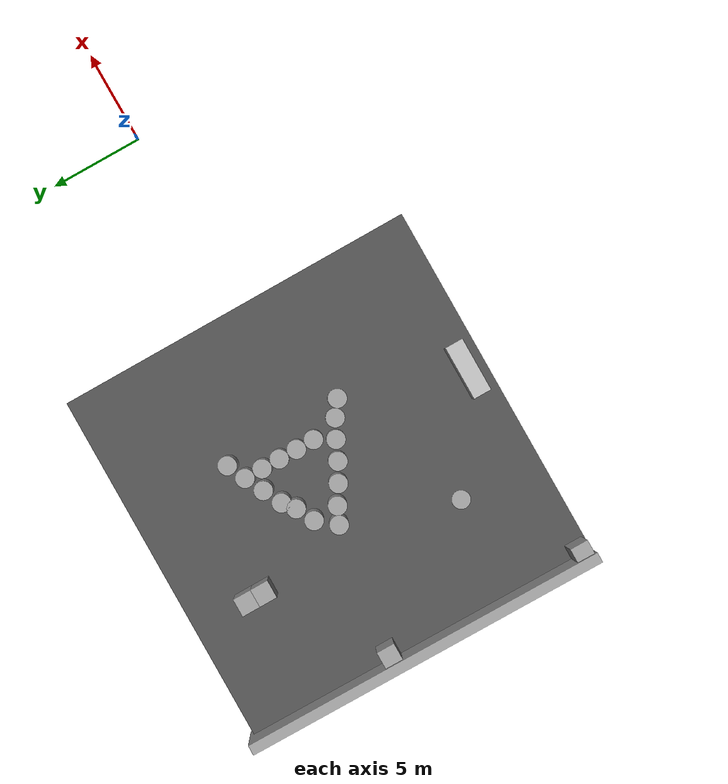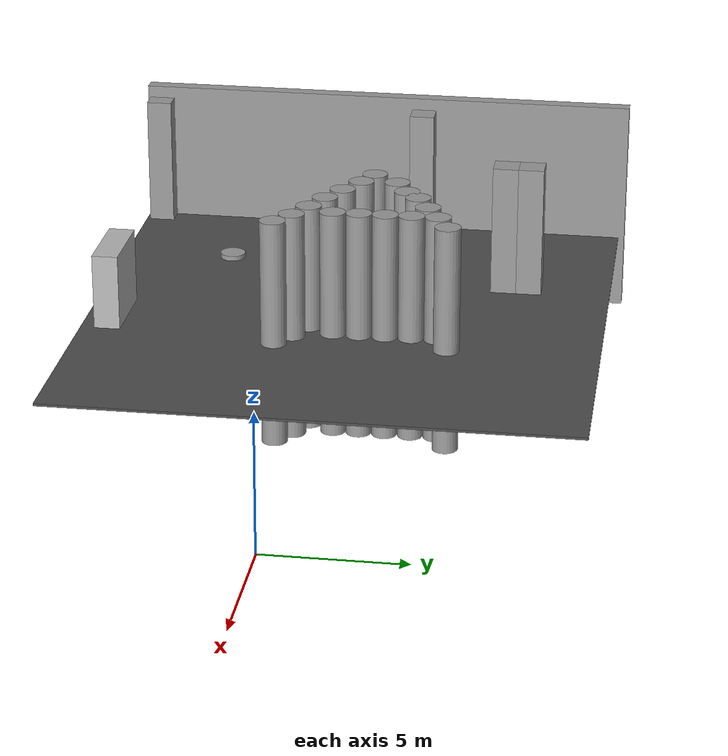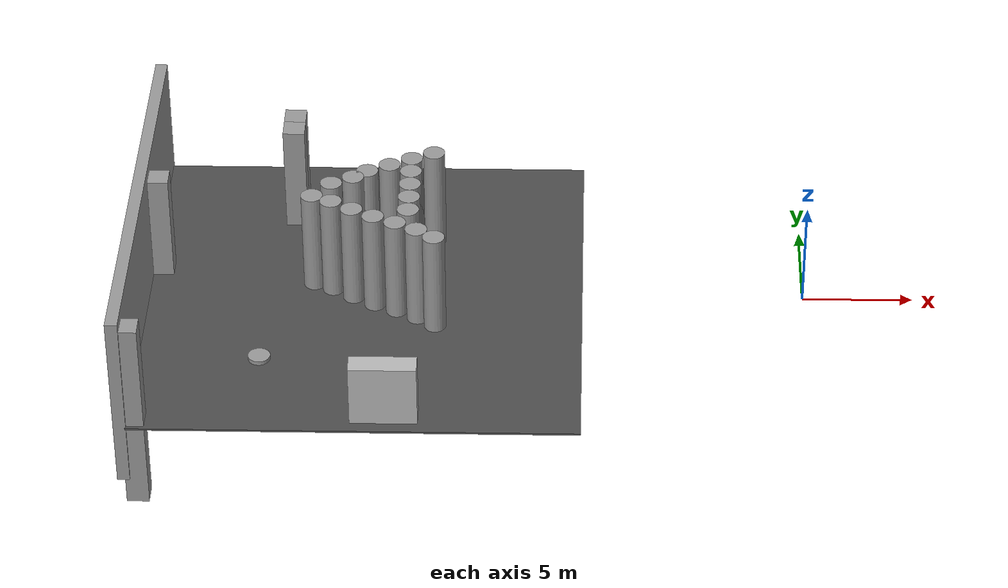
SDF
<sdf version="1.6">
 <model name="MW_world_1_0_0">
  <link name="link_0_0_clone_5_clone_2_clone_4_clone_6">
   <pose>-16.7873 -2.35435 0.5 0 -0 0</pose>
   <inertial>
    <mass>9.05819</mass>
    <inertia><ixx>62.5018</ixx><ixy>0</ixy><ixz>0</ixz><iyy>62.5018</iyy><iyz>0</iyz><izz>1.13227</izz></inertia>
   </inertial>
   <visual name="visual_0">
    <geometry><cylinder><radius>0.5</radius><length>9.05819</length></cylinder></geometry>
    <material>
     <lighting>1</lighting>
     <script><uri>file://media/materials/scripts/gazebo.material</uri><name>Gazebo/Grey</name></script>
     <ambient>0.3 0.3 0.3 1</ambient>
     <diffuse>0.7 0.7 0.7 1</diffuse>
     <specular>0.01 0.01 0.01 1</specular>
     <emissive>0 0 0 1</emissive>
     <shader type="pixel"/>
    </material>
   </visual>
   <collision name="collision">
    <geometry><cylinder><radius>0.5</radius><length>9.05819</length></cylinder></geometry>
    <surface>
     <friction>
      <ode><mu>1</mu><mu2>1</mu2><fdir1>0 0 0</fdir1><slip1>0</slip1><slip2>0</slip2></ode>
      <torsional>
       <coefficient>1</coefficient>
       <patch_radius>0</patch_radius>
       <surface_radius>0</surface_radius>
       <use_patch_radius>1</use_patch_radius>
       <ode><slip>0</slip></ode>
      </torsional>
     </friction>
     <bounce><restitution_coefficient>0</restitution_coefficient><threshold>1e+06</threshold></bounce>
     <contact>
      <collide_without_contact>0</collide_without_contact>
      <collide_without_contact_bitmask>1</collide_without_contact_bitmask>
      <collide_bitmask>1</collide_bitmask>
      <ode>
       <soft_cfm>0</soft_cfm>
       <soft_erp>0.2</soft_erp>
       <kp>1e+13</kp>
       <kd>1</kd>
       <max_vel>0.01</max_vel>
       <min_depth>0</min_depth>
      </ode>
      <bullet>
       <split_impulse>1</split_impulse>
       <split_impulse_penetration_threshold>-0.01</split_impulse_penetration_threshold>
       <soft_cfm>0</soft_cfm>
       <soft_erp>0.2</soft_erp>
       <kp>1e+13</kp>
       <kd>1</kd>
      </bullet>
     </contact>
    </surface>
   </collision>
  </link>
  <link name="link_0_0_clone_5_clone_9_clone">
   <pose>-22.4398 0.7321 0.5 0 -0 0</pose>
   <inertial>
    <mass>9.05819</mass>
    <inertia><ixx>62.5018</ixx><ixy>0</ixy><ixz>0</ixz><iyy>62.5018</iyy><iyz>0</iyz><izz>1.13227</izz></inertia>
   </inertial>
   <visual name="visual_0">
    <geometry><cylinder><radius>0.5</radius><length>9.05819</length></cylinder></geometry>
    <material>
     <lighting>1</lighting>
     <script><uri>file://media/materials/scripts/gazebo.material</uri><name>Gazebo/Grey</name></script>
     <ambient>0.3 0.3 0.3 1</ambient>
     <diffuse>0.7 0.7 0.7 1</diffuse>
     <specular>0.01 0.01 0.01 1</specular>
     <emissive>0 0 0 1</emissive>
     <shader type="pixel"/>
    </material>
   </visual>
   <collision name="collision">
    <geometry><cylinder><radius>0.5</radius><length>9.05819</length></cylinder></geometry>
    <surface>
     <friction>
      <ode><mu>1</mu><mu2>1</mu2><fdir1>0 0 0</fdir1><slip1>0</slip1><slip2>0</slip2></ode>
      <torsional>
       <coefficient>1</coefficient>
       <patch_radius>0</patch_radius>
       <surface_radius>0</surface_radius>
       <use_patch_radius>1</use_patch_radius>
       <ode><slip>0</slip></ode>
      </torsional>
     </friction>
     <bounce><restitution_coefficient>0</restitution_coefficient><threshold>1e+06</threshold></bounce>
     <contact>
      <collide_without_contact>0</collide_without_contact>
      <collide_without_contact_bitmask>1</collide_without_contact_bitmask>
      <collide_bitmask>1</collide_bitmask>
      <ode>
       <soft_cfm>0</soft_cfm>
       <soft_erp>0.2</soft_erp>
       <kp>1e+13</kp>
       <kd>1</kd>
       <max_vel>0.01</max_vel>
       <min_depth>0</min_depth>
      </ode>
      <bullet>
       <split_impulse>1</split_impulse>
       <split_impulse_penetration_threshold>-0.01</split_impulse_penetration_threshold>
       <soft_cfm>0</soft_cfm>
       <soft_erp>0.2</soft_erp>
       <kp>1e+13</kp>
       <kd>1</kd>
      </bullet>
     </contact>
    </surface>
   </collision>
  </link>
  <link name="link_0_0_clone_5_clone_9_clone_0">
   <pose>-21.5496 0.324095 0.5 0 -0 0</pose>
   <inertial>
    <mass>9.05819</mass>
    <inertia><ixx>62.5018</ixx><ixy>0</ixy><ixz>0</ixz><iyy>62.5018</iyy><iyz>0</iyz><izz>1.13227</izz></inertia>
   </inertial>
   <visual name="visual_0">
    <geometry><cylinder><radius>0.5</radius><length>9.05819</length></cylinder></geometry>
    <material>
     <lighting>1</lighting>
     <script><uri>file://media/materials/scripts/gazebo.material</uri><name>Gazebo/Grey</name></script>
     <ambient>0.3 0.3 0.3 1</ambient>
     <diffuse>0.7 0.7 0.7 1</diffuse>
     <specular>0.01 0.01 0.01 1</specular>
     <emissive>0 0 0 1</emissive>
     <shader type="pixel"/>
    </material>
   </visual>
   <collision name="collision">
    <geometry><cylinder><radius>0.5</radius><length>9.05819</length></cylinder></geometry>
    <surface>
     <friction>
      <ode><mu>1</mu><mu2>1</mu2><fdir1>0 0 0</fdir1><slip1>0</slip1><slip2>0</slip2></ode>
      <torsional>
       <coefficient>1</coefficient>
       <patch_radius>0</patch_radius>
       <surface_radius>0</surface_radius>
       <use_patch_radius>1</use_patch_radius>
       <ode><slip>0</slip></ode>
      </torsional>
     </friction>
     <bounce><restitution_coefficient>0</restitution_coefficient><threshold>1e+06</threshold></bounce>
     <contact>
      <collide_without_contact>0</collide_without_contact>
      <collide_without_contact_bitmask>1</collide_without_contact_bitmask>
      <collide_bitmask>1</collide_bitmask>
      <ode>
       <soft_cfm>0</soft_cfm>
       <soft_erp>0.2</soft_erp>
       <kp>1e+13</kp>
       <kd>1</kd>
       <max_vel>0.01</max_vel>
       <min_depth>0</min_depth>
      </ode>
      <bullet>
       <split_impulse>1</split_impulse>
       <split_impulse_penetration_threshold>-0.01</split_impulse_penetration_threshold>
       <soft_cfm>0</soft_cfm>
       <soft_erp>0.2</soft_erp>
       <kp>1e+13</kp>
       <kd>1</kd>
      </bullet>
     </contact>
    </surface>
   </collision>
  </link>
  <link name="link_0_0_clone_5_clone_9_clone_1">
   <pose>-20.5779 -0.2679 0.5 0 -0 0</pose>
   <inertial>
    <mass>9.05819</mass>
    <inertia><ixx>62.5018</ixx><ixy>0</ixy><ixz>0</ixz><iyy>62.5018</iyy><iyz>0</iyz><izz>1.13227</izz></inertia>
   </inertial>
   <visual name="visual_0">
    <geometry><cylinder><radius>0.5</radius><length>9.05819</length></cylinder></geometry>
    <material>
     <lighting>1</lighting>
     <script><uri>file://media/materials/scripts/gazebo.material</uri><name>Gazebo/Grey</name></script>
     <ambient>0.3 0.3 0.3 1</ambient>
     <diffuse>0.7 0.7 0.7 1</diffuse>
     <specular>0.01 0.01 0.01 1</specular>
     <emissive>0 0 0 1</emissive>
     <shader type="pixel"/>
    </material>
   </visual>
   <collision name="collision">
    <geometry><cylinder><radius>0.5</radius><length>9.05819</length></cylinder></geometry>
    <surface>
     <friction>
      <ode><mu>1</mu><mu2>1</mu2><fdir1>0 0 0</fdir1><slip1>0</slip1><slip2>0</slip2></ode>
      <torsional>
       <coefficient>1</coefficient>
       <patch_radius>0</patch_radius>
       <surface_radius>0</surface_radius>
       <use_patch_radius>1</use_patch_radius>
       <ode><slip>0</slip></ode>
      </torsional>
     </friction>
     <bounce><restitution_coefficient>0</restitution_coefficient><threshold>1e+06</threshold></bounce>
     <contact>
      <collide_without_contact>0</collide_without_contact>
      <collide_without_contact_bitmask>1</collide_without_contact_bitmask>
      <collide_bitmask>1</collide_bitmask>
      <ode>
       <soft_cfm>0</soft_cfm>
       <soft_erp>0.2</soft_erp>
       <kp>1e+13</kp>
       <kd>1</kd>
       <max_vel>0.01</max_vel>
       <min_depth>0</min_depth>
      </ode>
      <bullet>
       <split_impulse>1</split_impulse>
       <split_impulse_penetration_threshold>-0.01</split_impulse_penetration_threshold>
       <soft_cfm>0</soft_cfm>
       <soft_erp>0.2</soft_erp>
       <kp>1e+13</kp>
       <kd>1</kd>
      </bullet>
     </contact>
    </surface>
   </collision>
  </link>
  <link name="link_0_0_clone_5_clone_9_clone_11">
   <pose>-17.5977 -1.77285 0.5 0 -0 0</pose>
   <inertial>
    <mass>9.05819</mass>
    <inertia><ixx>62.5018</ixx><ixy>0</ixy><ixz>0</ixz><iyy>62.5018</iyy><iyz>0</iyz><izz>1.13227</izz></inertia>
   </inertial>
   <visual name="visual_0">
    <geometry><cylinder><radius>0.5</radius><length>9.05819</length></cylinder></geometry>
    <material>
     <lighting>1</lighting>
     <script><uri>file://media/materials/scripts/gazebo.material</uri><name>Gazebo/Grey</name></script>
     <ambient>0.3 0.3 0.3 1</ambient>
     <diffuse>0.7 0.7 0.7 1</diffuse>
     <specular>0.01 0.01 0.01 1</specular>
     <emissive>0 0 0 1</emissive>
     <shader type="pixel"/>
    </material>
   </visual>
   <collision name="collision">
    <geometry><cylinder><radius>0.5</radius><length>9.05819</length></cylinder></geometry>
    <surface>
     <friction>
      <ode><mu>1</mu><mu2>1</mu2><fdir1>0 0 0</fdir1><slip1>0</slip1><slip2>0</slip2></ode>
      <torsional>
       <coefficient>1</coefficient>
       <patch_radius>0</patch_radius>
       <surface_radius>0</surface_radius>
       <use_patch_radius>1</use_patch_radius>
       <ode><slip>0</slip></ode>
      </torsional>
     </friction>
     <bounce><restitution_coefficient>0</restitution_coefficient><threshold>1e+06</threshold></bounce>
     <contact>
      <collide_without_contact>0</collide_without_contact>
      <collide_without_contact_bitmask>1</collide_without_contact_bitmask>
      <collide_bitmask>1</collide_bitmask>
      <ode>
       <soft_cfm>0</soft_cfm>
       <soft_erp>0.2</soft_erp>
       <kp>1e+13</kp>
       <kd>1</kd>
       <max_vel>0.01</max_vel>
       <min_depth>0</min_depth>
      </ode>
      <bullet>
       <split_impulse>1</split_impulse>
       <split_impulse_penetration_threshold>-0.01</split_impulse_penetration_threshold>
       <soft_cfm>0</soft_cfm>
       <soft_erp>0.2</soft_erp>
       <kp>1e+13</kp>
       <kd>1</kd>
      </bullet>
     </contact>
    </surface>
   </collision>
  </link>
  <link name="link_0_0_clone_5_clone_9_clone_14">
   <pose>-18.0181 -0.2679 0.5 0 -0 0</pose>
   <inertial>
    <mass>9.05819</mass>
    <inertia><ixx>62.5018</ixx><ixy>0</ixy><ixz>0</ixz><iyy>62.5018</iyy><iyz>0</iyz><izz>1.13227</izz></inertia>
   </inertial>
   <visual name="visual_0">
    <geometry><cylinder><radius>0.5</radius><length>9.05819</length></cylinder></geometry>
    <material>
     <lighting>1</lighting>
     <script><uri>file://media/materials/scripts/gazebo.material</uri><name>Gazebo/Grey</name></script>
     <ambient>0.3 0.3 0.3 1</ambient>
     <diffuse>0.7 0.7 0.7 1</diffuse>
     <specular>0.01 0.01 0.01 1</specular>
     <emissive>0 0 0 1</emissive>
     <shader type="pixel"/>
    </material>
   </visual>
   <collision name="collision">
    <geometry><cylinder><radius>0.5</radius><length>9.05819</length></cylinder></geometry>
    <surface>
     <friction>
      <ode><mu>1</mu><mu2>1</mu2><fdir1>0 0 0</fdir1><slip1>0</slip1><slip2>0</slip2></ode>
      <torsional>
       <coefficient>1</coefficient>
       <patch_radius>0</patch_radius>
       <surface_radius>0</surface_radius>
       <use_patch_radius>1</use_patch_radius>
       <ode><slip>0</slip></ode>
      </torsional>
     </friction>
     <bounce><restitution_coefficient>0</restitution_coefficient><threshold>1e+06</threshold></bounce>
     <contact>
      <collide_without_contact>0</collide_without_contact>
      <collide_without_contact_bitmask>1</collide_without_contact_bitmask>
      <collide_bitmask>1</collide_bitmask>
      <ode>
       <soft_cfm>0</soft_cfm>
       <soft_erp>0.2</soft_erp>
       <kp>1e+13</kp>
       <kd>1</kd>
       <max_vel>0.01</max_vel>
       <min_depth>0</min_depth>
      </ode>
      <bullet>
       <split_impulse>1</split_impulse>
       <split_impulse_penetration_threshold>-0.01</split_impulse_penetration_threshold>
       <soft_cfm>0</soft_cfm>
       <soft_erp>0.2</soft_erp>
       <kp>1e+13</kp>
       <kd>1</kd>
      </bullet>
     </contact>
    </surface>
   </collision>
  </link>
  <link name="link_0_0_clone_5_clone_9_clone_15">
   <pose>-18.0181 0.7321 0.5 0 -0 0</pose>
   <inertial>
    <mass>9.05819</mass>
    <inertia><ixx>62.5018</ixx><ixy>0</ixy><ixz>0</ixz><iyy>62.5018</iyy><iyz>0</iyz><izz>1.13227</izz></inertia>
   </inertial>
   <visual name="visual_0">
    <geometry><cylinder><radius>0.5</radius><length>9.05819</length></cylinder></geometry>
    <material>
     <lighting>1</lighting>
     <script><uri>file://media/materials/scripts/gazebo.material</uri><name>Gazebo/Grey</name></script>
     <ambient>0.3 0.3 0.3 1</ambient>
     <diffuse>0.7 0.7 0.7 1</diffuse>
     <specular>0.01 0.01 0.01 1</specular>
     <emissive>0 0 0 1</emissive>
     <shader type="pixel"/>
    </material>
   </visual>
   <collision name="collision">
    <geometry><cylinder><radius>0.5</radius><length>9.05819</length></cylinder></geometry>
    <surface>
     <friction>
      <ode><mu>1</mu><mu2>1</mu2><fdir1>0 0 0</fdir1><slip1>0</slip1><slip2>0</slip2></ode>
      <torsional>
       <coefficient>1</coefficient>
       <patch_radius>0</patch_radius>
       <surface_radius>0</surface_radius>
       <use_patch_radius>1</use_patch_radius>
       <ode><slip>0</slip></ode>
      </torsional>
     </friction>
     <bounce><restitution_coefficient>0</restitution_coefficient><threshold>1e+06</threshold></bounce>
     <contact>
      <collide_without_contact>0</collide_without_contact>
      <collide_without_contact_bitmask>1</collide_without_contact_bitmask>
      <collide_bitmask>1</collide_bitmask>
      <ode>
       <soft_cfm>0</soft_cfm>
       <soft_erp>0.2</soft_erp>
       <kp>1e+13</kp>
       <kd>1</kd>
       <max_vel>0.01</max_vel>
       <min_depth>0</min_depth>
      </ode>
      <bullet>
       <split_impulse>1</split_impulse>
       <split_impulse_penetration_threshold>-0.01</split_impulse_penetration_threshold>
       <soft_cfm>0</soft_cfm>
       <soft_erp>0.2</soft_erp>
       <kp>1e+13</kp>
       <kd>1</kd>
      </bullet>
     </contact>
    </surface>
   </collision>
  </link>
  <link name="link_0_0_clone_5_clone_9_clone_16">
   <pose>-18.0181 1.7321 0.5 0 -0 0</pose>
   <inertial>
    <mass>9.05819</mass>
    <inertia><ixx>62.5018</ixx><ixy>0</ixy><ixz>0</ixz><iyy>62.5018</iyy><iyz>0</iyz><izz>1.13227</izz></inertia>
   </inertial>
   <visual name="visual_0">
    <geometry><cylinder><radius>0.5</radius><length>9.05819</length></cylinder></geometry>
    <material>
     <lighting>1</lighting>
     <script><uri>file://media/materials/scripts/gazebo.material</uri><name>Gazebo/Grey</name></script>
     <ambient>0.3 0.3 0.3 1</ambient>
     <diffuse>0.7 0.7 0.7 1</diffuse>
     <specular>0.01 0.01 0.01 1</specular>
     <emissive>0 0 0 1</emissive>
     <shader type="pixel"/>
    </material>
   </visual>
   <collision name="collision">
    <geometry><cylinder><radius>0.5</radius><length>9.05819</length></cylinder></geometry>
    <surface>
     <friction>
      <ode><mu>1</mu><mu2>1</mu2><fdir1>0 0 0</fdir1><slip1>0</slip1><slip2>0</slip2></ode>
      <torsional>
       <coefficient>1</coefficient>
       <patch_radius>0</patch_radius>
       <surface_radius>0</surface_radius>
       <use_patch_radius>1</use_patch_radius>
       <ode><slip>0</slip></ode>
      </torsional>
     </friction>
     <bounce><restitution_coefficient>0</restitution_coefficient><threshold>1e+06</threshold></bounce>
     <contact>
      <collide_without_contact>0</collide_without_contact>
      <collide_without_contact_bitmask>1</collide_without_contact_bitmask>
      <collide_bitmask>1</collide_bitmask>
      <ode>
       <soft_cfm>0</soft_cfm>
       <soft_erp>0.2</soft_erp>
       <kp>1e+13</kp>
       <kd>1</kd>
       <max_vel>0.01</max_vel>
       <min_depth>0</min_depth>
      </ode>
      <bullet>
       <split_impulse>1</split_impulse>
       <split_impulse_penetration_threshold>-0.01</split_impulse_penetration_threshold>
       <soft_cfm>0</soft_cfm>
       <soft_erp>0.2</soft_erp>
       <kp>1e+13</kp>
       <kd>1</kd>
      </bullet>
     </contact>
    </surface>
   </collision>
  </link>
  <link name="link_0_0_clone_5_clone_9_clone_17">
   <pose>-18.0181 2.7321 0.5 0 -0 0</pose>
   <inertial>
    <mass>9.05819</mass>
    <inertia><ixx>62.5018</ixx><ixy>0</ixy><ixz>0</ixz><iyy>62.5018</iyy><iyz>0</iyz><izz>1.13227</izz></inertia>
   </inertial>
   <visual name="visual_0">
    <geometry><cylinder><radius>0.5</radius><length>9.05819</length></cylinder></geometry>
    <material>
     <lighting>1</lighting>
     <script><uri>file://media/materials/scripts/gazebo.material</uri><name>Gazebo/Grey</name></script>
     <ambient>0.3 0.3 0.3 1</ambient>
     <diffuse>0.7 0.7 0.7 1</diffuse>
     <specular>0.01 0.01 0.01 1</specular>
     <emissive>0 0 0 1</emissive>
     <shader type="pixel"/>
    </material>
   </visual>
   <collision name="collision">
    <geometry><cylinder><radius>0.5</radius><length>9.05819</length></cylinder></geometry>
    <surface>
     <friction>
      <ode><mu>1</mu><mu2>1</mu2><fdir1>0 0 0</fdir1><slip1>0</slip1><slip2>0</slip2></ode>
      <torsional>
       <coefficient>1</coefficient>
       <patch_radius>0</patch_radius>
       <surface_radius>0</surface_radius>
       <use_patch_radius>1</use_patch_radius>
       <ode><slip>0</slip></ode>
      </torsional>
     </friction>
     <bounce><restitution_coefficient>0</restitution_coefficient><threshold>1e+06</threshold></bounce>
     <contact>
      <collide_without_contact>0</collide_without_contact>
      <collide_without_contact_bitmask>1</collide_without_contact_bitmask>
      <collide_bitmask>1</collide_bitmask>
      <ode>
       <soft_cfm>0</soft_cfm>
       <soft_erp>0.2</soft_erp>
       <kp>1e+13</kp>
       <kd>1</kd>
       <max_vel>0.01</max_vel>
       <min_depth>0</min_depth>
      </ode>
      <bullet>
       <split_impulse>1</split_impulse>
       <split_impulse_penetration_threshold>-0.01</split_impulse_penetration_threshold>
       <soft_cfm>0</soft_cfm>
       <soft_erp>0.2</soft_erp>
       <kp>1e+13</kp>
       <kd>1</kd>
      </bullet>
     </contact>
    </surface>
   </collision>
  </link>
  <link name="link_0_0_clone_5_clone_9_clone_2">
   <pose>-19.5839 -0.80685 0.5 0 -0 0</pose>
   <inertial>
    <mass>9.05819</mass>
    <inertia><ixx>62.5018</ixx><ixy>0</ixy><ixz>0</ixz><iyy>62.5018</iyy><iyz>0</iyz><izz>1.13227</izz></inertia>
   </inertial>
   <visual name="visual_0">
    <geometry><cylinder><radius>0.5</radius><length>9.05819</length></cylinder></geometry>
    <material>
     <lighting>1</lighting>
     <script><uri>file://media/materials/scripts/gazebo.material</uri><name>Gazebo/Grey</name></script>
     <ambient>0.3 0.3 0.3 1</ambient>
     <diffuse>0.7 0.7 0.7 1</diffuse>
     <specular>0.01 0.01 0.01 1</specular>
     <emissive>0 0 0 1</emissive>
     <shader type="pixel"/>
    </material>
   </visual>
   <collision name="collision">
    <geometry><cylinder><radius>0.5</radius><length>9.05819</length></cylinder></geometry>
    <surface>
     <friction>
      <ode><mu>1</mu><mu2>1</mu2><fdir1>0 0 0</fdir1><slip1>0</slip1><slip2>0</slip2></ode>
      <torsional>
       <coefficient>1</coefficient>
       <patch_radius>0</patch_radius>
       <surface_radius>0</surface_radius>
       <use_patch_radius>1</use_patch_radius>
       <ode><slip>0</slip></ode>
      </torsional>
     </friction>
     <bounce><restitution_coefficient>0</restitution_coefficient><threshold>1e+06</threshold></bounce>
     <contact>
      <collide_without_contact>0</collide_without_contact>
      <collide_without_contact_bitmask>1</collide_without_contact_bitmask>
      <collide_bitmask>1</collide_bitmask>
      <ode>
       <soft_cfm>0</soft_cfm>
       <soft_erp>0.2</soft_erp>
       <kp>1e+13</kp>
       <kd>1</kd>
       <max_vel>0.01</max_vel>
       <min_depth>0</min_depth>
      </ode>
      <bullet>
       <split_impulse>1</split_impulse>
       <split_impulse_penetration_threshold>-0.01</split_impulse_penetration_threshold>
       <soft_cfm>0</soft_cfm>
       <soft_erp>0.2</soft_erp>
       <kp>1e+13</kp>
       <kd>1</kd>
      </bullet>
     </contact>
    </surface>
   </collision>
  </link>
  <link name="link_0_0_clone_5_clone_9_clone_3">
   <pose>-18.5698 -1.2679 0.5 0 -0 0</pose>
   <inertial>
    <mass>9.05819</mass>
    <inertia><ixx>62.5018</ixx><ixy>0</ixy><ixz>0</ixz><iyy>62.5018</iyy><iyz>0</iyz><izz>1.13227</izz></inertia>
   </inertial>
   <visual name="visual_0">
    <geometry><cylinder><radius>0.5</radius><length>9.05819</length></cylinder></geometry>
    <material>
     <lighting>1</lighting>
     <script><uri>file://media/materials/scripts/gazebo.material</uri><name>Gazebo/Grey</name></script>
     <ambient>0.3 0.3 0.3 1</ambient>
     <diffuse>0.7 0.7 0.7 1</diffuse>
     <specular>0.01 0.01 0.01 1</specular>
     <emissive>0 0 0 1</emissive>
     <shader type="pixel"/>
    </material>
   </visual>
   <collision name="collision">
    <geometry><cylinder><radius>0.5</radius><length>9.05819</length></cylinder></geometry>
    <surface>
     <friction>
      <ode><mu>1</mu><mu2>1</mu2><fdir1>0 0 0</fdir1><slip1>0</slip1><slip2>0</slip2></ode>
      <torsional>
       <coefficient>1</coefficient>
       <patch_radius>0</patch_radius>
       <surface_radius>0</surface_radius>
       <use_patch_radius>1</use_patch_radius>
       <ode><slip>0</slip></ode>
      </torsional>
     </friction>
     <bounce><restitution_coefficient>0</restitution_coefficient><threshold>1e+06</threshold></bounce>
     <contact>
      <collide_without_contact>0</collide_without_contact>
      <collide_without_contact_bitmask>1</collide_without_contact_bitmask>
      <collide_bitmask>1</collide_bitmask>
      <ode>
       <soft_cfm>0</soft_cfm>
       <soft_erp>0.2</soft_erp>
       <kp>1e+13</kp>
       <kd>1</kd>
       <max_vel>0.01</max_vel>
       <min_depth>0</min_depth>
      </ode>
      <bullet>
       <split_impulse>1</split_impulse>
       <split_impulse_penetration_threshold>-0.01</split_impulse_penetration_threshold>
       <soft_cfm>0</soft_cfm>
       <soft_erp>0.2</soft_erp>
       <kp>1e+13</kp>
       <kd>1</kd>
      </bullet>
     </contact>
    </surface>
   </collision>
  </link>
  <link name="link_0_0_clone_5_clone_9_clone_4">
   <pose>-21.6156 1.7321 0.5 0 -0 0</pose>
   <inertial>
    <mass>9.05819</mass>
    <inertia><ixx>62.5018</ixx><ixy>0</ixy><ixz>0</ixz><iyy>62.5018</iyy><iyz>0</iyz><izz>1.13227</izz></inertia>
   </inertial>
   <visual name="visual_0">
    <geometry><cylinder><radius>0.5</radius><length>9.05819</length></cylinder></geometry>
    <material>
     <lighting>1</lighting>
     <script><uri>file://media/materials/scripts/gazebo.material</uri><name>Gazebo/Grey</name></script>
     <ambient>0.3 0.3 0.3 1</ambient>
     <diffuse>0.7 0.7 0.7 1</diffuse>
     <specular>0.01 0.01 0.01 1</specular>
     <emissive>0 0 0 1</emissive>
     <shader type="pixel"/>
    </material>
   </visual>
   <collision name="collision">
    <geometry><cylinder><radius>0.5</radius><length>9.05819</length></cylinder></geometry>
    <surface>
     <friction>
      <ode><mu>1</mu><mu2>1</mu2><fdir1>0 0 0</fdir1><slip1>0</slip1><slip2>0</slip2></ode>
      <torsional>
       <coefficient>1</coefficient>
       <patch_radius>0</patch_radius>
       <surface_radius>0</surface_radius>
       <use_patch_radius>1</use_patch_radius>
       <ode><slip>0</slip></ode>
      </torsional>
     </friction>
     <bounce><restitution_coefficient>0</restitution_coefficient><threshold>1e+06</threshold></bounce>
     <contact>
      <collide_without_contact>0</collide_without_contact>
      <collide_without_contact_bitmask>1</collide_without_contact_bitmask>
      <collide_bitmask>1</collide_bitmask>
      <ode>
       <soft_cfm>0</soft_cfm>
       <soft_erp>0.2</soft_erp>
       <kp>1e+13</kp>
       <kd>1</kd>
       <max_vel>0.01</max_vel>
       <min_depth>0</min_depth>
      </ode>
      <bullet>
       <split_impulse>1</split_impulse>
       <split_impulse_penetration_threshold>-0.01</split_impulse_penetration_threshold>
       <soft_cfm>0</soft_cfm>
       <soft_erp>0.2</soft_erp>
       <kp>1e+13</kp>
       <kd>1</kd>
      </bullet>
     </contact>
    </surface>
   </collision>
  </link>
  <link name="link_0_0_clone_5_clone_9_clone_5">
   <pose>-20.646 2.22752 0.5 0 -0 0</pose>
   <inertial>
    <mass>9.05819</mass>
    <inertia><ixx>62.5018</ixx><ixy>0</ixy><ixz>0</ixz><iyy>62.5018</iyy><iyz>0</iyz><izz>1.13227</izz></inertia>
   </inertial>
   <visual name="visual_0">
    <geometry><cylinder><radius>0.5</radius><length>9.05819</length></cylinder></geometry>
    <material>
     <lighting>1</lighting>
     <script><uri>file://media/materials/scripts/gazebo.material</uri><name>Gazebo/Grey</name></script>
     <ambient>0.3 0.3 0.3 1</ambient>
     <diffuse>0.7 0.7 0.7 1</diffuse>
     <specular>0.01 0.01 0.01 1</specular>
     <emissive>0 0 0 1</emissive>
     <shader type="pixel"/>
    </material>
   </visual>
   <collision name="collision">
    <geometry><cylinder><radius>0.5</radius><length>9.05819</length></cylinder></geometry>
    <surface>
     <friction>
      <ode><mu>1</mu><mu2>1</mu2><fdir1>0 0 0</fdir1><slip1>0</slip1><slip2>0</slip2></ode>
      <torsional>
       <coefficient>1</coefficient>
       <patch_radius>0</patch_radius>
       <surface_radius>0</surface_radius>
       <use_patch_radius>1</use_patch_radius>
       <ode><slip>0</slip></ode>
      </torsional>
     </friction>
     <bounce><restitution_coefficient>0</restitution_coefficient><threshold>1e+06</threshold></bounce>
     <contact>
      <collide_without_contact>0</collide_without_contact>
      <collide_without_contact_bitmask>1</collide_without_contact_bitmask>
      <collide_bitmask>1</collide_bitmask>
      <ode>
       <soft_cfm>0</soft_cfm>
       <soft_erp>0.2</soft_erp>
       <kp>1e+13</kp>
       <kd>1</kd>
       <max_vel>0.01</max_vel>
       <min_depth>0</min_depth>
      </ode>
      <bullet>
       <split_impulse>1</split_impulse>
       <split_impulse_penetration_threshold>-0.01</split_impulse_penetration_threshold>
       <soft_cfm>0</soft_cfm>
       <soft_erp>0.2</soft_erp>
       <kp>1e+13</kp>
       <kd>1</kd>
      </bullet>
     </contact>
    </surface>
   </collision>
  </link>
  <link name="link_0_0_clone_5_clone_9_clone_6">
   <pose>-20.0181 2.7321 0.5 0 -0 0</pose>
   <inertial>
    <mass>9.05819</mass>
    <inertia><ixx>62.5018</ixx><ixy>0</ixy><ixz>0</ixz><iyy>62.5018</iyy><iyz>0</iyz><izz>1.13227</izz></inertia>
   </inertial>
   <visual name="visual_0">
    <geometry><cylinder><radius>0.5</radius><length>9.05819</length></cylinder></geometry>
    <material>
     <lighting>1</lighting>
     <script><uri>file://media/materials/scripts/gazebo.material</uri><name>Gazebo/Grey</name></script>
     <ambient>0.3 0.3 0.3 1</ambient>
     <diffuse>0.7 0.7 0.7 1</diffuse>
     <specular>0.01 0.01 0.01 1</specular>
     <emissive>0 0 0 1</emissive>
     <shader type="pixel"/>
    </material>
   </visual>
   <collision name="collision">
    <geometry><cylinder><radius>0.5</radius><length>9.05819</length></cylinder></geometry>
    <surface>
     <friction>
      <ode><mu>1</mu><mu2>1</mu2><fdir1>0 0 0</fdir1><slip1>0</slip1><slip2>0</slip2></ode>
      <torsional>
       <coefficient>1</coefficient>
       <patch_radius>0</patch_radius>
       <surface_radius>0</surface_radius>
       <use_patch_radius>1</use_patch_radius>
       <ode><slip>0</slip></ode>
      </torsional>
     </friction>
     <bounce><restitution_coefficient>0</restitution_coefficient><threshold>1e+06</threshold></bounce>
     <contact>
      <collide_without_contact>0</collide_without_contact>
      <collide_without_contact_bitmask>1</collide_without_contact_bitmask>
      <collide_bitmask>1</collide_bitmask>
      <ode>
       <soft_cfm>0</soft_cfm>
       <soft_erp>0.2</soft_erp>
       <kp>1e+13</kp>
       <kd>1</kd>
       <max_vel>0.01</max_vel>
       <min_depth>0</min_depth>
      </ode>
      <bullet>
       <split_impulse>1</split_impulse>
       <split_impulse_penetration_threshold>-0.01</split_impulse_penetration_threshold>
       <soft_cfm>0</soft_cfm>
       <soft_erp>0.2</soft_erp>
       <kp>1e+13</kp>
       <kd>1</kd>
      </bullet>
     </contact>
    </surface>
   </collision>
  </link>
  <link name="link_0_0_clone_5_clone_9_clone_7">
   <pose>-19.0181 3.22379 0.5 0 -0 0</pose>
   <inertial>
    <mass>9.05819</mass>
    <inertia><ixx>62.5018</ixx><ixy>0</ixy><ixz>0</ixz><iyy>62.5018</iyy><iyz>0</iyz><izz>1.13227</izz></inertia>
   </inertial>
   <visual name="visual_0">
    <geometry><cylinder><radius>0.5</radius><length>9.05819</length></cylinder></geometry>
    <material>
     <lighting>1</lighting>
     <script><uri>file://media/materials/scripts/gazebo.material</uri><name>Gazebo/Grey</name></script>
     <ambient>0.3 0.3 0.3 1</ambient>
     <diffuse>0.7 0.7 0.7 1</diffuse>
     <specular>0.01 0.01 0.01 1</specular>
     <emissive>0 0 0 1</emissive>
     <shader type="pixel"/>
    </material>
   </visual>
   <collision name="collision">
    <geometry><cylinder><radius>0.5</radius><length>9.05819</length></cylinder></geometry>
    <surface>
     <friction>
      <ode><mu>1</mu><mu2>1</mu2><fdir1>0 0 0</fdir1><slip1>0</slip1><slip2>0</slip2></ode>
      <torsional>
       <coefficient>1</coefficient>
       <patch_radius>0</patch_radius>
       <surface_radius>0</surface_radius>
       <use_patch_radius>1</use_patch_radius>
       <ode><slip>0</slip></ode>
      </torsional>
     </friction>
     <bounce><restitution_coefficient>0</restitution_coefficient><threshold>1e+06</threshold></bounce>
     <contact>
      <collide_without_contact>0</collide_without_contact>
      <collide_without_contact_bitmask>1</collide_without_contact_bitmask>
      <collide_bitmask>1</collide_bitmask>
      <ode>
       <soft_cfm>0</soft_cfm>
       <soft_erp>0.2</soft_erp>
       <kp>1e+13</kp>
       <kd>1</kd>
       <max_vel>0.01</max_vel>
       <min_depth>0</min_depth>
      </ode>
      <bullet>
       <split_impulse>1</split_impulse>
       <split_impulse_penetration_threshold>-0.01</split_impulse_penetration_threshold>
       <soft_cfm>0</soft_cfm>
       <soft_erp>0.2</soft_erp>
       <kp>1e+13</kp>
       <kd>1</kd>
      </bullet>
     </contact>
    </surface>
   </collision>
  </link>
  <link name="link_0_0_clone_5_clone_9_clone_8">
   <pose>-18.0181 3.7321 0.5 0 -0 0</pose>
   <inertial>
    <mass>9.05819</mass>
    <inertia><ixx>62.5018</ixx><ixy>0</ixy><ixz>0</ixz><iyy>62.5018</iyy><iyz>0</iyz><izz>1.13227</izz></inertia>
   </inertial>
   <visual name="visual_0">
    <geometry><cylinder><radius>0.5</radius><length>9.05819</length></cylinder></geometry>
    <material>
     <lighting>1</lighting>
     <script><uri>file://media/materials/scripts/gazebo.material</uri><name>Gazebo/Grey</name></script>
     <ambient>0.3 0.3 0.3 1</ambient>
     <diffuse>0.7 0.7 0.7 1</diffuse>
     <specular>0.01 0.01 0.01 1</specular>
     <emissive>0 0 0 1</emissive>
     <shader type="pixel"/>
    </material>
   </visual>
   <collision name="collision">
    <geometry><cylinder><radius>0.5</radius><length>9.05819</length></cylinder></geometry>
    <surface>
     <friction>
      <ode><mu>1</mu><mu2>1</mu2><fdir1>0 0 0</fdir1><slip1>0</slip1><slip2>0</slip2></ode>
      <torsional>
       <coefficient>1</coefficient>
       <patch_radius>0</patch_radius>
       <surface_radius>0</surface_radius>
       <use_patch_radius>1</use_patch_radius>
       <ode><slip>0</slip></ode>
      </torsional>
     </friction>
     <bounce><restitution_coefficient>0</restitution_coefficient><threshold>1e+06</threshold></bounce>
     <contact>
      <collide_without_contact>0</collide_without_contact>
      <collide_without_contact_bitmask>1</collide_without_contact_bitmask>
      <collide_bitmask>1</collide_bitmask>
      <ode>
       <soft_cfm>0</soft_cfm>
       <soft_erp>0.2</soft_erp>
       <kp>1e+13</kp>
       <kd>1</kd>
       <max_vel>0.01</max_vel>
       <min_depth>0</min_depth>
      </ode>
      <bullet>
       <split_impulse>1</split_impulse>
       <split_impulse_penetration_threshold>-0.01</split_impulse_penetration_threshold>
       <soft_cfm>0</soft_cfm>
       <soft_erp>0.2</soft_erp>
       <kp>1e+13</kp>
       <kd>1</kd>
      </bullet>
     </contact>
    </surface>
   </collision>
  </link>
  <link name="link_0_0_clone_5_clone_9_clone_9">
   <pose>-17.0181 4.20038 0.5 0 -0 0</pose>
   <inertial>
    <mass>9.05819</mass>
    <inertia><ixx>62.5018</ixx><ixy>0</ixy><ixz>0</ixz><iyy>62.5018</iyy><iyz>0</iyz><izz>1.13227</izz></inertia>
   </inertial>
   <visual name="visual_0">
    <geometry><cylinder><radius>0.5</radius><length>9.05819</length></cylinder></geometry>
    <material>
     <lighting>1</lighting>
     <script><uri>file://media/materials/scripts/gazebo.material</uri><name>Gazebo/Grey</name></script>
     <ambient>0.3 0.3 0.3 1</ambient>
     <diffuse>0.7 0.7 0.7 1</diffuse>
     <specular>0.01 0.01 0.01 1</specular>
     <emissive>0 0 0 1</emissive>
     <shader type="pixel"/>
    </material>
   </visual>
   <collision name="collision">
    <geometry><cylinder><radius>0.5</radius><length>9.05819</length></cylinder></geometry>
    <surface>
     <friction>
      <ode><mu>1</mu><mu2>1</mu2><fdir1>0 0 0</fdir1><slip1>0</slip1><slip2>0</slip2></ode>
      <torsional>
       <coefficient>1</coefficient>
       <patch_radius>0</patch_radius>
       <surface_radius>0</surface_radius>
       <use_patch_radius>1</use_patch_radius>
       <ode><slip>0</slip></ode>
      </torsional>
     </friction>
     <bounce><restitution_coefficient>0</restitution_coefficient><threshold>1e+06</threshold></bounce>
     <contact>
      <collide_without_contact>0</collide_without_contact>
      <collide_without_contact_bitmask>1</collide_without_contact_bitmask>
      <collide_bitmask>1</collide_bitmask>
      <ode>
       <soft_cfm>0</soft_cfm>
       <soft_erp>0.2</soft_erp>
       <kp>1e+13</kp>
       <kd>1</kd>
       <max_vel>0.01</max_vel>
       <min_depth>0</min_depth>
      </ode>
      <bullet>
       <split_impulse>1</split_impulse>
       <split_impulse_penetration_threshold>-0.01</split_impulse_penetration_threshold>
       <soft_cfm>0</soft_cfm>
       <soft_erp>0.2</soft_erp>
       <kp>1e+13</kp>
       <kd>1</kd>
      </bullet>
     </contact>
    </surface>
   </collision>
  </link>
  <link name="link_0_clone_0">
   <pose>-24.5387 -5.37265 0.5 0 -0 0</pose>
   <inertial>
    <mass>0.190242</mass>
    <inertia>
     <ixx>0.0124639</ixx>
     <ixy>0</ixy>
     <ixz>0</ixz>
     <iyy>0.0124639</iyy>
     <iyz>0</iyz>
     <izz>0.0237802</izz>
    </inertia>
   </inertial>
   <visual name="visual">
    <geometry><cylinder><radius>0.5</radius><length>0.190241</length></cylinder></geometry>
    <material>
     <lighting>1</lighting>
     <script><uri>file://media/materials/scripts/gazebo.material</uri><name>Gazebo/Grey</name></script>
     <ambient>0.3 0.3 0.3 1</ambient>
     <diffuse>0.7 0.7 0.7 1</diffuse>
     <specular>0.01 0.01 0.01 1</specular>
     <emissive>0 0 0 1</emissive>
     <shader type="pixel"/>
    </material>
   </visual>
   <collision name="collision">
    <geometry><cylinder><radius>0.5</radius><length>0.190241</length></cylinder></geometry>
    <surface>
     <friction>
      <ode><mu>1</mu><mu2>1</mu2><fdir1>0 0 0</fdir1><slip1>0</slip1><slip2>0</slip2></ode>
      <torsional>
       <coefficient>1</coefficient>
       <patch_radius>0</patch_radius>
       <surface_radius>0</surface_radius>
       <use_patch_radius>1</use_patch_radius>
       <ode><slip>0</slip></ode>
      </torsional>
     </friction>
     <bounce><restitution_coefficient>0</restitution_coefficient><threshold>1e+06</threshold></bounce>
     <contact>
      <collide_without_contact>0</collide_without_contact>
      <collide_without_contact_bitmask>1</collide_without_contact_bitmask>
      <collide_bitmask>1</collide_bitmask>
      <ode>
       <soft_cfm>0</soft_cfm>
       <soft_erp>0.2</soft_erp>
       <kp>1e+13</kp>
       <kd>1</kd>
       <max_vel>0.01</max_vel>
       <min_depth>0</min_depth>
      </ode>
      <bullet>
       <split_impulse>1</split_impulse>
       <split_impulse_penetration_threshold>-0.01</split_impulse_penetration_threshold>
       <soft_cfm>0</soft_cfm>
       <soft_erp>0.2</soft_erp>
       <kp>1e+13</kp>
       <kd>1</kd>
      </bullet>
     </contact>
    </surface>
   </collision>
  </link>
  <link name="link_0_clone_clone_0_clone_2">
   <pose>-29.7873 -9.35435 0.5 0 -0 0</pose>
   <inertial>
    <mass>9.47467</mass>
    <inertia><ixx>71.6676</ixx><ixy>0</ixy><ixz>0</ixz><iyy>71.6676</iyy><iyz>0</iyz><izz>1.57911</izz></inertia>
   </inertial>
   <visual name="visual">
    <geometry><box><size>1 1 9.47467</size></box></geometry>
    <material>
     <lighting>1</lighting>
     <script><uri>file://media/materials/scripts/gazebo.material</uri><name>Gazebo/Grey</name></script>
     <ambient>0.3 0.3 0.3 1</ambient>
     <diffuse>0.7 0.7 0.7 1</diffuse>
     <specular>0.01 0.01 0.01 1</specular>
     <emissive>0 0 0 1</emissive>
     <shader type="pixel"/>
    </material>
   </visual>
   <collision name="collision">
    <geometry><box><size>1 1 9.47467</size></box></geometry>
    <surface>
     <friction>
      <ode><mu>1</mu><mu2>1</mu2><fdir1>0 0 0</fdir1><slip1>0</slip1><slip2>0</slip2></ode>
      <torsional>
       <coefficient>1</coefficient>
       <patch_radius>0</patch_radius>
       <surface_radius>0</surface_radius>
       <use_patch_radius>1</use_patch_radius>
       <ode><slip>0</slip></ode>
      </torsional>
     </friction>
     <bounce><restitution_coefficient>0</restitution_coefficient><threshold>1e+06</threshold></bounce>
     <contact>
      <collide_without_contact>0</collide_without_contact>
      <collide_without_contact_bitmask>1</collide_without_contact_bitmask>
      <collide_bitmask>1</collide_bitmask>
      <ode>
       <soft_cfm>0</soft_cfm>
       <soft_erp>0.2</soft_erp>
       <kp>1e+13</kp>
       <kd>1</kd>
       <max_vel>0.01</max_vel>
       <min_depth>0</min_depth>
      </ode>
      <bullet>
       <split_impulse>1</split_impulse>
       <split_impulse_penetration_threshold>-0.01</split_impulse_penetration_threshold>
       <soft_cfm>0</soft_cfm>
       <soft_erp>0.2</soft_erp>
       <kp>1e+13</kp>
       <kd>1</kd>
      </bullet>
     </contact>
    </surface>
   </collision>
  </link>
  <link name="link_0_clone_clone_1_clone">
   <pose>-29.5166 1.77459 0.5 0 -0 0</pose>
   <inertial>
    <mass>9.47467</mass>
    <inertia><ixx>71.6676</ixx><ixy>0</ixy><ixz>0</ixz><iyy>71.6676</iyy><iyz>0</iyz><izz>1.57911</izz></inertia>
   </inertial>
   <visual name="visual">
    <geometry><box><size>1 1 9.47467</size></box></geometry>
    <material>
     <lighting>1</lighting>
     <script><uri>file://media/materials/scripts/gazebo.material</uri><name>Gazebo/Grey</name></script>
     <ambient>0.3 0.3 0.3 1</ambient>
     <diffuse>0.7 0.7 0.7 1</diffuse>
     <specular>0.01 0.01 0.01 1</specular>
     <emissive>0 0 0 1</emissive>
     <shader type="pixel"/>
    </material>
   </visual>
   <collision name="collision">
    <geometry><box><size>1 1 9.47467</size></box></geometry>
    <surface>
     <friction>
      <ode><mu>1</mu><mu2>1</mu2><fdir1>0 0 0</fdir1><slip1>0</slip1><slip2>0</slip2></ode>
      <torsional>
       <coefficient>1</coefficient>
       <patch_radius>0</patch_radius>
       <surface_radius>0</surface_radius>
       <use_patch_radius>1</use_patch_radius>
       <ode><slip>0</slip></ode>
      </torsional>
     </friction>
     <bounce><restitution_coefficient>0</restitution_coefficient><threshold>1e+06</threshold></bounce>
     <contact>
      <collide_without_contact>0</collide_without_contact>
      <collide_without_contact_bitmask>1</collide_without_contact_bitmask>
      <collide_bitmask>1</collide_bitmask>
      <ode>
       <soft_cfm>0</soft_cfm>
       <soft_erp>0.2</soft_erp>
       <kp>1e+13</kp>
       <kd>1</kd>
       <max_vel>0.01</max_vel>
       <min_depth>0</min_depth>
      </ode>
      <bullet>
       <split_impulse>1</split_impulse>
       <split_impulse_penetration_threshold>-0.01</split_impulse_penetration_threshold>
       <soft_cfm>0</soft_cfm>
       <soft_erp>0.2</soft_erp>
       <kp>1e+13</kp>
       <kd>1</kd>
      </bullet>
     </contact>
    </surface>
   </collision>
  </link>
  <link name="link_0_clone_clone_1_clone_1_clone_2">
   <pose>-23.5718 5.78761 0.5 0 -0 0</pose>
   <inertial>
    <mass>9.47467</mass>
    <inertia><ixx>71.6676</ixx><ixy>0</ixy><ixz>0</ixz><iyy>71.6676</iyy><iyz>0</iyz><izz>1.57911</izz></inertia>
   </inertial>
   <visual name="visual">
    <geometry><box><size>1 1 9.47467</size></box></geometry>
    <material>
     <lighting>1</lighting>
     <script><uri>file://media/materials/scripts/gazebo.material</uri><name>Gazebo/Grey</name></script>
     <ambient>0.3 0.3 0.3 1</ambient>
     <diffuse>0.7 0.7 0.7 1</diffuse>
     <specular>0.01 0.01 0.01 1</specular>
     <emissive>0 0 0 1</emissive>
     <shader type="pixel"/>
    </material>
   </visual>
   <collision name="collision">
    <geometry><box><size>1 1 9.47467</size></box></geometry>
    <surface>
     <friction>
      <ode><mu>1</mu><mu2>1</mu2><fdir1>0 0 0</fdir1><slip1>0</slip1><slip2>0</slip2></ode>
      <torsional>
       <coefficient>1</coefficient>
       <patch_radius>0</patch_radius>
       <surface_radius>0</surface_radius>
       <use_patch_radius>1</use_patch_radius>
       <ode><slip>0</slip></ode>
      </torsional>
     </friction>
     <bounce><restitution_coefficient>0</restitution_coefficient><threshold>1e+06</threshold></bounce>
     <contact>
      <collide_without_contact>0</collide_without_contact>
      <collide_without_contact_bitmask>1</collide_without_contact_bitmask>
      <collide_bitmask>1</collide_bitmask>
      <ode>
       <soft_cfm>0</soft_cfm>
       <soft_erp>0.2</soft_erp>
       <kp>1e+13</kp>
       <kd>1</kd>
       <max_vel>0.01</max_vel>
       <min_depth>0</min_depth>
      </ode>
      <bullet>
       <split_impulse>1</split_impulse>
       <split_impulse_penetration_threshold>-0.01</split_impulse_penetration_threshold>
       <soft_cfm>0</soft_cfm>
       <soft_erp>0.2</soft_erp>
       <kp>1e+13</kp>
       <kd>1</kd>
      </bullet>
     </contact>
    </surface>
   </collision>
  </link>
  <link name="link_0_clone_clone_1_clone_1_clone_3">
   <pose>-23.5718 6.78761 0.5 0 -0 0</pose>
   <inertial>
    <mass>9.47467</mass>
    <inertia><ixx>71.6676</ixx><ixy>0</ixy><ixz>0</ixz><iyy>71.6676</iyy><iyz>0</iyz><izz>1.57911</izz></inertia>
   </inertial>
   <visual name="visual">
    <geometry><box><size>1 1 9.47467</size></box></geometry>
    <material>
     <lighting>1</lighting>
     <script><uri>file://media/materials/scripts/gazebo.material</uri><name>Gazebo/Grey</name></script>
     <ambient>0.3 0.3 0.3 1</ambient>
     <diffuse>0.7 0.7 0.7 1</diffuse>
     <specular>0.01 0.01 0.01 1</specular>
     <emissive>0 0 0 1</emissive>
     <shader type="pixel"/>
    </material>
   </visual>
   <collision name="collision">
    <geometry><box><size>1 1 9.47467</size></box></geometry>
    <surface>
     <friction>
      <ode><mu>1</mu><mu2>1</mu2><fdir1>0 0 0</fdir1><slip1>0</slip1><slip2>0</slip2></ode>
      <torsional>
       <coefficient>1</coefficient>
       <patch_radius>0</patch_radius>
       <surface_radius>0</surface_radius>
       <use_patch_radius>1</use_patch_radius>
       <ode><slip>0</slip></ode>
      </torsional>
     </friction>
     <bounce><restitution_coefficient>0</restitution_coefficient><threshold>1e+06</threshold></bounce>
     <contact>
      <collide_without_contact>0</collide_without_contact>
      <collide_without_contact_bitmask>1</collide_without_contact_bitmask>
      <collide_bitmask>1</collide_bitmask>
      <ode>
       <soft_cfm>0</soft_cfm>
       <soft_erp>0.2</soft_erp>
       <kp>1e+13</kp>
       <kd>1</kd>
       <max_vel>0.01</max_vel>
       <min_depth>0</min_depth>
      </ode>
      <bullet>
       <split_impulse>1</split_impulse>
       <split_impulse_penetration_threshold>-0.01</split_impulse_penetration_threshold>
       <soft_cfm>0</soft_cfm>
       <soft_erp>0.2</soft_erp>
       <kp>1e+13</kp>
       <kd>1</kd>
      </bullet>
     </contact>
    </surface>
   </collision>
  </link>
  <model name="asphalt_plane_clone">
   <static>1</static>
   <link name="link">
    <collision name="collision"><geometry><box><size>20 20 0.1</size></box></geometry></collision>
    <visual name="visual">
     <cast_shadows>0</cast_shadows>
     <geometry><box><size>20 20 0.1</size></box></geometry>
     <material>
      <script>
       <uri>model://asphalt_plane/materials/scripts</uri>
       <uri>model://asphalt_plane/materials/textures</uri>
       <name>vrc/asphalt</name>
      </script>
     </material>
    </visual>
   </link>
   <pose>-20.1125 0.000602 0 0 -0 0</pose>
  </model>
  <model name="brick_box_3x1x3_clone_1_clone_clone">
   <static>1</static>
   <link name="chassis">
    <pose>0 0 1.5 0 -0 0</pose>
    <collision name="collision"><geometry><box><size>3 1 3</size></box></geometry></collision>
    <visual name="visual">
     <geometry><mesh><uri>model://brick_box_3x1x3/meshes/simple_box.dae</uri><scale>3 1 3</scale></mesh></geometry>
     <material>
      <script>
       <uri>model://brick_box_3x1x3/materials/scripts</uri>
       <uri>model://brick_box_3x1x3/materials/textures</uri>
       <name>BrickBox/Diffuse</name>
      </script>
     </material>
    </visual>
   </link>
   <pose>-18.7873 -8.9505 0 0 -0 0</pose>
  </model>
  <model name="grey_wall_mw_clone_3">
   <link name="link">
    <pose>-8.81665 -2.69351 1.4 0 -0 0</pose>
    <inertial>
     <inertia><ixx>nan</ixx><ixy>0</ixy><ixz>0</ixz><iyy>nan</iyy><iyz>0</iyz><izz>nan</izz></inertia>
     <mass>0</mass>
    </inertial>
    <visual name="visual">
     <cast_shadows>0</cast_shadows>
     <geometry><box><size>20.2056 0.556506 8.63552</size></box></geometry>
     <material>
      <script>
       <uri>model://grey_wall/materials/scripts</uri>
       <uri>model://grey_wall/materials/textures</uri>
       <name>vrc/grey_wall</name>
      </script>
      <ambient>1 1 1 1</ambient>
      <diffuse>1 1 1 1</diffuse>
      <specular>0 0 0 1</specular>
      <emissive>0 0 0 1</emissive>
     </material>
    </visual>
    <collision name="collision">
     <geometry><box><size>20.2056 0.556506 8.63552</size></box></geometry>
     <surface>
      <friction>
       <ode><mu>1</mu><mu2>1</mu2><fdir1>0 0 0</fdir1><slip1>0</slip1><slip2>0</slip2></ode>
       <torsional>
        <coefficient>1</coefficient>
        <patch_radius>0</patch_radius>
        <surface_radius>0</surface_radius>
        <use_patch_radius>1</use_patch_radius>
        <ode><slip>0</slip></ode>
       </torsional>
      </friction>
      <bounce><restitution_coefficient>0</restitution_coefficient><threshold>1e+06</threshold></bounce>
      <contact>
       <collide_without_contact>0</collide_without_contact>
       <collide_without_contact_bitmask>1</collide_without_contact_bitmask>
       <collide_bitmask>1</collide_bitmask>
       <ode>
        <soft_cfm>0</soft_cfm>
        <soft_erp>0.2</soft_erp>
        <kp>1e+13</kp>
        <kd>1</kd>
        <max_vel>0.01</max_vel>
        <min_depth>0</min_depth>
       </ode>
       <bullet>
        <split_impulse>1</split_impulse>
        <split_impulse_penetration_threshold>-0.01</split_impulse_penetration_threshold>
        <soft_cfm>0</soft_cfm>
        <soft_erp>0.2</soft_erp>
        <kp>1e+13</kp>
        <kd>1</kd>
       </bullet>
      </contact>
     </surface>
    </collision>
   </link>
   <static>1</static>
   <pose>-27.6401 -8.70126 0 0 0 -1.58073</pose>
  </model>
  <static>1</static>
 </model>
</sdf>
